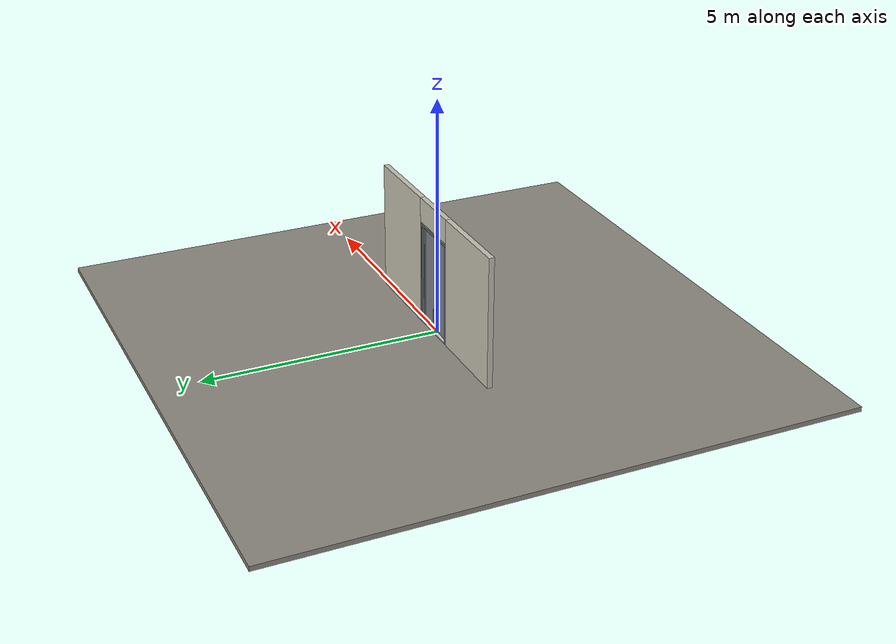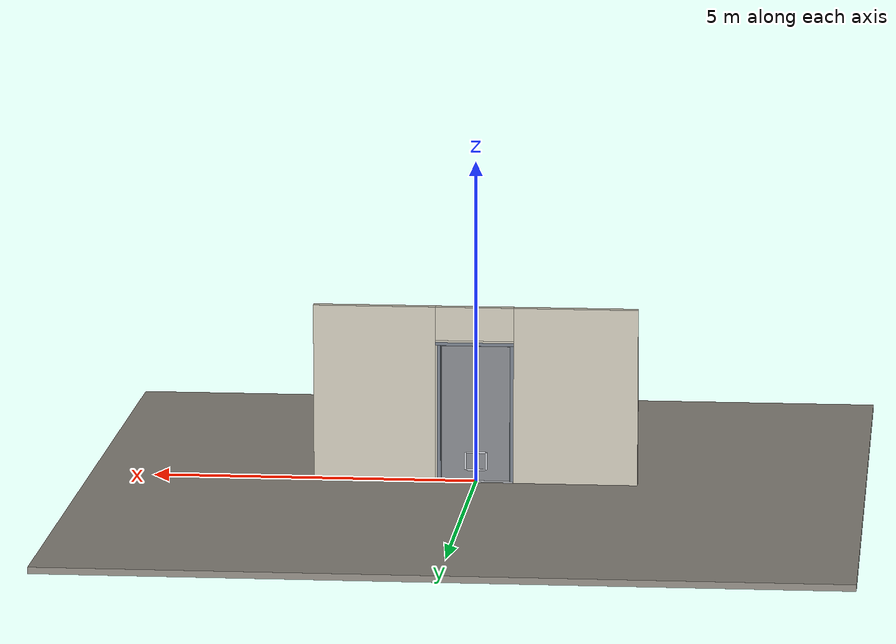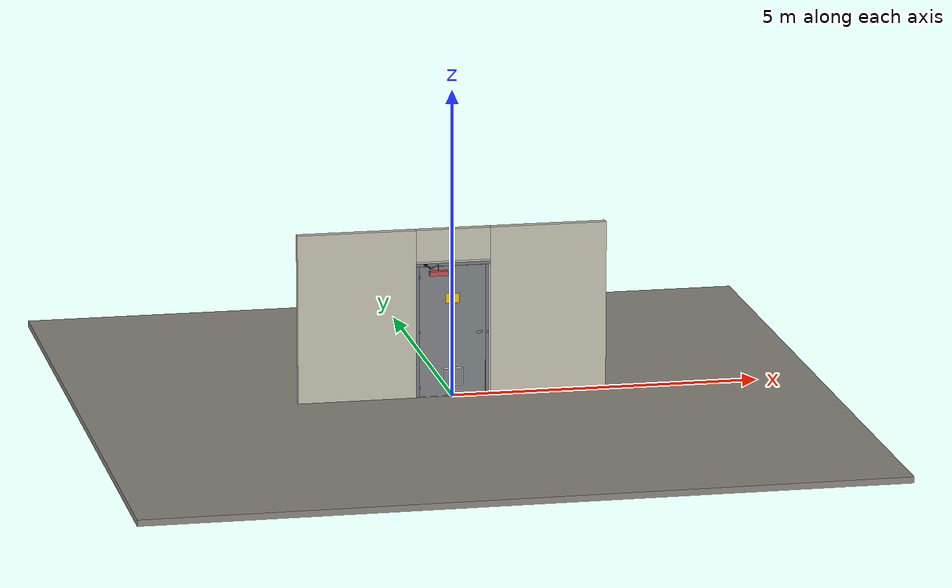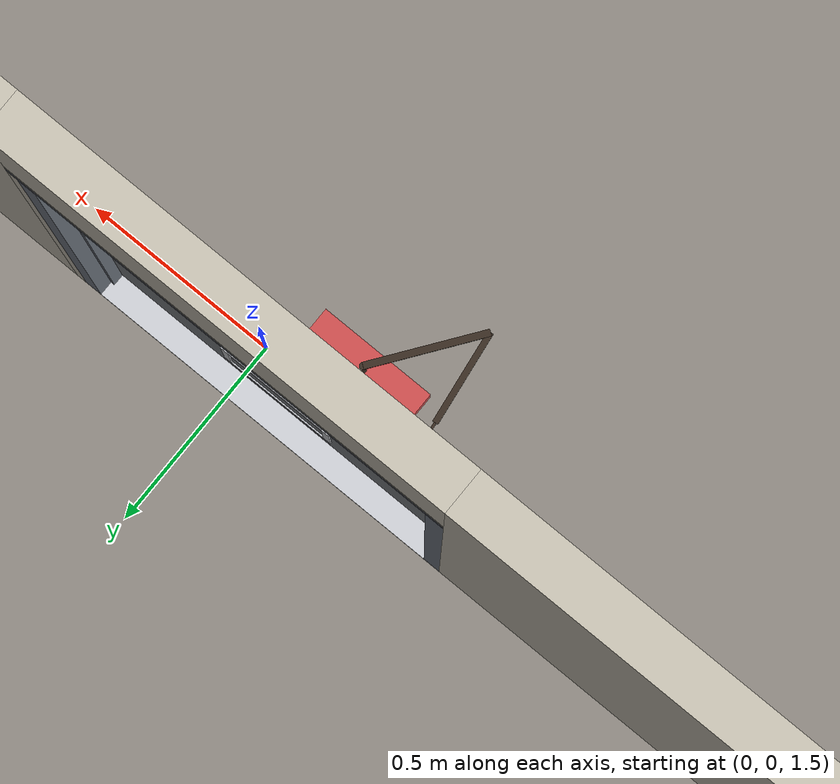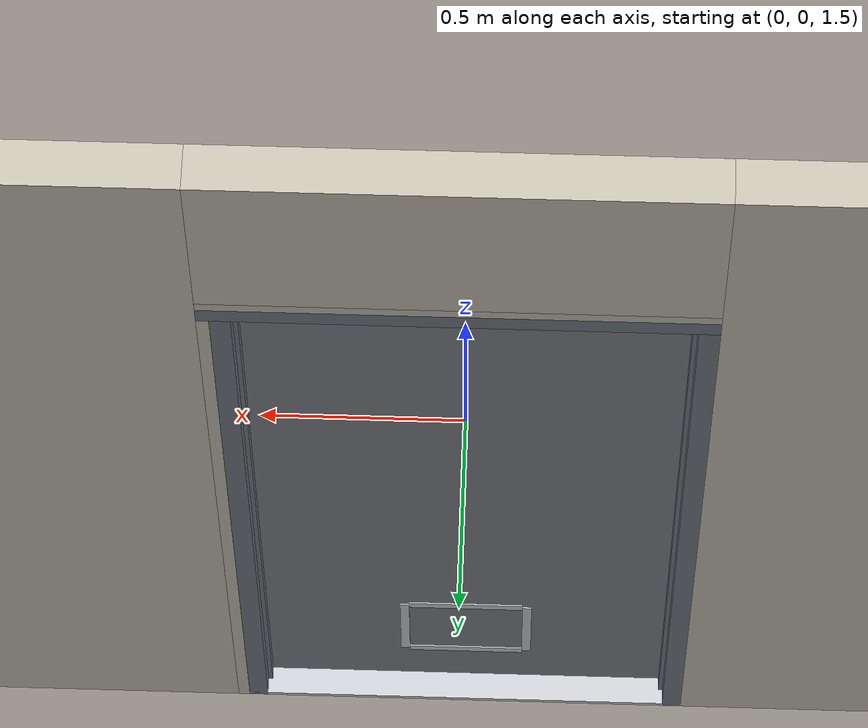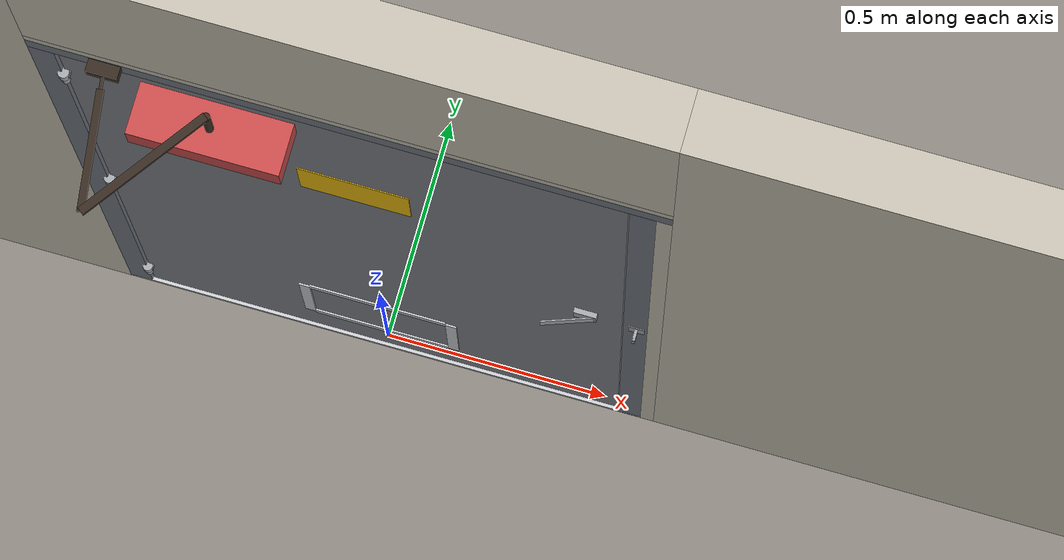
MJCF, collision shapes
<?xml version="1.0" ?>
<mujoco model="db0374_swing_single_full">
  <compiler angle="radian" meshdir="../../hardware" texturedir="../../textures" autolimits="true" inertiafromgeom="false"/>
  <option timestep="0.002" integrator="implicitfast" cone="elliptic" impratio="10" noslip_iterations="3">
    <flag multiccd="enable"/>
  </option>
  <size memory="16M"/>
  <default>
    <geom condim="4" solref="0.005 1" solimp="0.95 0.99 0.001"/>
    <joint solreflimit="0.005 1" solimplimit="0.95 0.99 0.001"/>
    <tendon solreflimit="0.005 1"/>
    <equality solref="0.002 1"/>
  </default>
  <visual>
    <headlight ambient="0.4 0.4 0.4" diffuse="0.7 0.7 0.7" specular="0.2 0.2 0.2"/>
    <quality shadowsize="4096"/>
    <map znear="0.01" zfar="60"/>
  </visual>
  <asset>
    <mesh name="closer_body_fdc4667657" file="closer_body_fdc4667657.obj"/>
    <mesh name="strap_hinge_78d1bbb966" file="strap_hinge_78d1bbb966.obj"/>
    <material name="mat_floor" rgba="0.55 0.53 0.5 1" specular="0.2" shininess="0.15" reflectance="0"/>
    <material name="mat_wall" rgba="0.78 0.76 0.7 1" specular="0.2" shininess="0.1" reflectance="0"/>
    <material name="mat_leaf" rgba="0.5 0.51 0.53 1" specular="0.2" shininess="0.46" reflectance="0"/>
    <material name="mat_hinge" rgba="0.65 0.66 0.68 1" specular="0.74" shininess="0.5" reflectance="0.36"/>
    <material name="mat_op_steel_galvanized" rgba="0.65 0.66 0.68 1" specular="0.74" shininess="0.5" reflectance="0.36"/>
    <material name="mat_padlock" rgba="0.85 0.66 0.3 1" specular="0.8" shininess="0.75" reflectance="0.4"/>
    <material name="mat_frame" rgba="0.45 0.48 0.52 1" specular="0.32" shininess="0.6" reflectance="0.08"/>
    <material name="mat_threshold" rgba="0.8 0.81 0.83 1" specular="0.8" shininess="0.6" reflectance="0.4"/>
    <material name="mat_closer" rgba="0.22 0.17 0.13 1" specular="0.8" shininess="0.6" reflectance="0.4"/>
    <material name="mat_vent" rgba="0.8 0.81 0.83 1" specular="0.8" shininess="0.6" reflectance="0.4"/>
    <material name="mat_placard" rgba="0.95 0.75 0.05 1" specular="0.2" shininess="0.5" reflectance="0"/>
    <texture name="skybox" type="skybox" builtin="gradient" rgb1="0.6 0.7 0.85" rgb2="0.9 0.92 0.95" width="256" height="256"/>
  </asset>
  <worldbody>
    <light name="sun" pos="1.5 -2.5 4" dir="-0.3 0.5 -0.8" directional="true" diffuse="0.8 0.8 0.8" specular="0.3 0.3 0.3" castshadow="true"/>
    <light name="fill" pos="-1.5 2.5 3" dir="0.3 -0.5 -0.7" directional="true" diffuse="0.35 0.35 0.4" castshadow="false"/>
    <camera name="robot_view" pos="0 -2.604812 1.812087" xyaxes="1 0 0 0 0.26963 0.962964" fovy="52"/>
    <camera name="far_view" pos="0 2.670812 1.812087" xyaxes="-1 0 0 0 -0.26963 0.962964" fovy="52"/>
    <camera name="iso" pos="2.004737 -2.182762 2.234138" xyaxes="0.741536 0.670913 0 -0.242917 0.268487 0.932151" fovy="46"/>
    <camera name="detail_handle" pos="0.747 -0.8385 1.32" xyaxes="0.97561 0.219512 0 -0.070934 0.315262 0.94635" fovy="38"/>
    <geom name="floor" type="box" size="6 6 0.05" pos="0 0 -0.05" material="mat_floor" group="0" contype="1" conaffinity="1" friction="0.8 0.005 0.0001" density="2400"/>
    <geom name="wall_left" type="box" size="0.9565 0.0575 1.3735" pos="-1.5435 0.033 1.3735" material="mat_wall" group="0" contype="1" conaffinity="1" friction="0.6 0.005 0.0001" density="800"/>
    <geom name="wall_right" type="box" size="0.9415 0.0575 1.3735" pos="1.5585 0.033 1.3735" material="mat_wall" group="0" contype="1" conaffinity="1" friction="0.6 0.005 0.0001" density="800"/>
    <geom name="wall_header" type="box" size="0.602 0.0575 0.26" pos="0.015 0.033 2.487" material="mat_wall" group="0" contype="1" conaffinity="1" friction="0.6 0.005 0.0001" density="800"/>
    <geom name="hinge_pintle_0" type="cylinder" size="0.008 0.02" pos="-0.534 -0.0245 0.141" material="mat_hinge" group="1" contype="0" conaffinity="0" density="7850"/>
    <geom name="hinge_pintle_1" type="cylinder" size="0.008 0.02" pos="-0.534 -0.0245 1.054" material="mat_hinge" group="1" contype="0" conaffinity="0" density="7850"/>
    <geom name="hinge_pintle_2" type="cylinder" size="0.008 0.02" pos="-0.534 -0.0245 1.967" material="mat_hinge" group="1" contype="0" conaffinity="0" density="7850"/>
    <geom name="leaf_staple_leg_n" type="box" size="0.003 0.0025 0.013" pos="0.565 -0.0375 1.0275" quat="0.707107 0.707107 0 0" material="mat_op_steel_galvanized" group="0" contype="1" conaffinity="1" friction="0.6 0.005 0.0001" density="7800"/>
    <geom name="leaf_staple_leg_p" type="box" size="0.003 0.0025 0.013" pos="0.565 -0.0375 1.0525" quat="0.707107 0.707107 0 0" material="mat_op_steel_galvanized" group="0" contype="1" conaffinity="1" friction="0.6 0.005 0.0001" density="7800"/>
    <geom name="leaf_staple_bridge" type="box" size="0.003 0.015 0.0025" pos="0.565 -0.048 1.04" quat="0.707107 0.707107 0 0" material="mat_op_steel_galvanized" group="0" contype="1" conaffinity="1" friction="0.6 0.005 0.0001" density="7800"/>
    <geom name="leaf_staple_base" type="box" size="0.016 0.021 0.001" pos="0.565 -0.0255 1.04" quat="0.707107 0.707107 0 0" material="mat_op_steel_galvanized" group="1" contype="0" conaffinity="0" density="7800"/>
    <geom name="jamb_hinge" type="box" size="0.025 0.0575 1.0735" pos="-0.562 0.033 1.0735" material="mat_frame" group="0" contype="1" conaffinity="1" friction="0.6 0.005 0.0001" density="300"/>
    <geom name="jamb_strike" type="box" size="0.025 0.0575 1.0735" pos="0.562 0.033 1.0735" material="mat_frame" group="0" contype="1" conaffinity="1" friction="0.6 0.005 0.0001" density="300"/>
    <geom name="stud_strike" type="box" size="0.015 0.0575 1.0735" pos="0.602 0.033 1.0735" material="mat_wall" group="0" contype="1" conaffinity="1" friction="0.6 0.005 0.0001" density="500"/>
    <geom name="jamb_head" type="box" size="0.602 0.0575 0.025" pos="0.015 0.033 2.172" material="mat_frame" group="0" contype="1" conaffinity="1" friction="0.6 0.005 0.0001" density="300"/>
    <geom name="head_stud" type="box" size="0.602 0.0575 0.015" pos="0.015 0.033 2.212" material="mat_wall" group="0" contype="1" conaffinity="1" friction="0.6 0.005 0.0001" density="500"/>
    <geom name="stop_hinge" type="box" size="0.0055 0.016 1.0735" pos="-0.5315 0.034 1.0735" material="mat_frame" group="0" contype="1" conaffinity="1" friction="0.6 0.005 0.0001" density="300"/>
    <geom name="stop_strike" type="box" size="0.0055 0.016 1.0735" pos="0.5315 0.034 1.0735" material="mat_frame" group="0" contype="1" conaffinity="1" friction="0.6 0.005 0.0001" density="300"/>
    <geom name="stop_head" type="box" size="0.537 0.016 0.0055" pos="0 0.034 2.1415" material="mat_frame" group="0" contype="1" conaffinity="1" friction="0.6 0.005 0.0001" density="300"/>
    <geom name="threshold" type="box" size="0.587 0.0575 0.0065" pos="0 0.033 0.0065" material="mat_threshold" group="0" contype="1" conaffinity="1" friction="0.5 0.005 0.0001" density="2700"/>
    <geom name="closer_bracket" type="box" size="0.03 0.012 0.014" pos="-0.437 -0.0365 2.177" material="mat_closer" group="1" contype="0" conaffinity="0" density="2700"/>
    <geom name="hinge_pintle_0_strap_0" type="box" size="0.0064 0.01775 0.016" pos="-0.534 0.00075 0.141" material="mat_hinge" group="1" contype="0" conaffinity="0" density="7850"/>
    <geom name="hinge_pintle_1_strap_0" type="box" size="0.0064 0.01775 0.016" pos="-0.534 0.00075 1.054" material="mat_hinge" group="1" contype="0" conaffinity="0" density="7850"/>
    <geom name="hinge_pintle_2_strap_0" type="box" size="0.0064 0.01775 0.016" pos="-0.534 0.00075 1.967" material="mat_hinge" group="1" contype="0" conaffinity="0" density="7850"/>
    <site name="approach_point" pos="0 -1.5 0" quat="1 0 0 0" size="0.05" rgba="0.2 0.9 0.2 0.5" group="4"/>
    <site name="goal_point" pos="0 1.5 0" quat="1 0 0 0" size="0.05" rgba="0.2 0.9 0.2 0.5" group="4"/>
    <site name="door_plane_center" pos="0 0 1.0735" quat="1 0 0 0" size="0.02" rgba="0.2 0.9 0.2 0.5" group="4"/>
    <body name="leaf" pos="-0.537 0 0">
      <inertial pos="0.472564 -0.01485 1.268634" mass="59.021646" quat="0.522144 0.522569 0.48737 -0.465572" diaginertia="4.938044446 27.71427112 32.569350382"/>
      <joint name="leaf_hinge" type="hinge" axis="0 0 -1" pos="0.003 -0.0245 0" limited="true" range="0 1.570796" damping="12.49954" frictionloss="6.260494" stiffness="14.183889" springref="-2.144687" armature="0.02"/>
      <geom name="leaf_slab" type="box" size="0.5335 0.0175 1.063" pos="0.5365 0 1.08" material="mat_leaf" group="0" contype="1" conaffinity="1" friction="0.4 0.005 0.0001" density="1"/>
      <geom name="hinge_strap_0" type="mesh" mesh="strap_hinge_78d1bbb966" pos="0.003 -0.0205 0.167" material="mat_hinge" group="1" contype="0" conaffinity="0" density="7850"/>
      <geom name="hinge_strap_eye_0" type="cylinder" size="0.011 0.012" pos="0.003 -0.0245 0.167" material="mat_hinge" group="1" contype="0" conaffinity="0" density="7850"/>
      <geom name="hinge_strap_neck_0" type="box" size="0.012 0.006 0.006" pos="0.003 -0.0225 0.167" material="mat_hinge" group="1" contype="0" conaffinity="0" density="7850"/>
      <geom name="hinge_strap_1" type="mesh" mesh="strap_hinge_78d1bbb966" pos="0.003 -0.0205 1.08" material="mat_hinge" group="1" contype="0" conaffinity="0" density="7850"/>
      <geom name="hinge_strap_eye_1" type="cylinder" size="0.011 0.012" pos="0.003 -0.0245 1.08" material="mat_hinge" group="1" contype="0" conaffinity="0" density="7850"/>
      <geom name="hinge_strap_neck_1" type="box" size="0.012 0.006 0.006" pos="0.003 -0.0225 1.08" material="mat_hinge" group="1" contype="0" conaffinity="0" density="7850"/>
      <geom name="hinge_strap_2" type="mesh" mesh="strap_hinge_78d1bbb966" pos="0.003 -0.0205 1.993" material="mat_hinge" group="1" contype="0" conaffinity="0" density="7850"/>
      <geom name="hinge_strap_eye_2" type="cylinder" size="0.011 0.012" pos="0.003 -0.0245 1.993" material="mat_hinge" group="1" contype="0" conaffinity="0" density="7850"/>
      <geom name="hinge_strap_neck_2" type="box" size="0.012 0.006 0.006" pos="0.003 -0.0225 1.993" material="mat_hinge" group="1" contype="0" conaffinity="0" density="7850"/>
      <geom name="leaf_hasp_plate" type="box" size="0.024 0.0215 0.0055" pos="0.995 -0.023 1.04" quat="0.707107 0.707107 0 0" material="mat_op_steel_galvanized" group="1" contype="0" conaffinity="0" density="7800"/>
      <geom name="closer_body" type="mesh" mesh="closer_body_fdc4667657" pos="0.3 -0.0175 2.046" quat="0.707107 0.707107 0 0" material="mat_closer" group="1" contype="0" conaffinity="0" density="2000"/>
      <geom name="closer_body_col" type="box" size="0.145 0.05 0.035" pos="0.3 -0.0675 2.046" material="mat_closer" group="3" contype="1" conaffinity="1" rgba="0.8 0.3 0.3 0.25" friction="0.6 0.005 0.0001" density="2000"/>
      <geom name="closer_pinion_shaft" type="cylinder" size="0.008 0.0655" pos="0.3 -0.0675 2.1115" material="mat_closer" group="1" contype="0" conaffinity="0" density="2700"/>
      <geom name="louver_vent_stile_n_l" type="box" size="0.012 0.002 0.137" pos="0.3745 -0.0195 0.322" material="mat_vent" group="2" contype="0" conaffinity="0" density="2700"/>
      <geom name="louver_vent_stile_n_r" type="box" size="0.012 0.002 0.137" pos="0.6985 -0.0195 0.322" material="mat_vent" group="2" contype="0" conaffinity="0" density="2700"/>
      <geom name="louver_vent_rail_n_b" type="box" size="0.15 0.002 0.012" pos="0.5365 -0.0195 0.185" material="mat_vent" group="2" contype="0" conaffinity="0" density="2700"/>
      <geom name="louver_vent_rail_n_t" type="box" size="0.15 0.002 0.012" pos="0.5365 -0.0195 0.459" material="mat_vent" group="2" contype="0" conaffinity="0" density="2700"/>
      <geom name="louver_vent_stile_p_l" type="box" size="0.012 0.002 0.137" pos="0.3745 0.0195 0.322" material="mat_vent" group="2" contype="0" conaffinity="0" density="2700"/>
      <geom name="louver_vent_stile_p_r" type="box" size="0.012 0.002 0.137" pos="0.6985 0.0195 0.322" material="mat_vent" group="2" contype="0" conaffinity="0" density="2700"/>
      <geom name="louver_vent_rail_p_b" type="box" size="0.15 0.002 0.012" pos="0.5365 0.0195 0.185" material="mat_vent" group="2" contype="0" conaffinity="0" density="2700"/>
      <geom name="louver_vent_rail_p_t" type="box" size="0.15 0.002 0.012" pos="0.5365 0.0195 0.459" material="mat_vent" group="2" contype="0" conaffinity="0" density="2700"/>
      <geom name="louver_vent_slat_0" type="box" size="0.15 0.0015 0.015" pos="0.5365 0 0.217833" quat="0.965926 -0.258819 0 0" material="mat_vent" group="2" contype="0" conaffinity="0" density="2700"/>
      <geom name="louver_vent_slat_1" type="box" size="0.15 0.0015 0.015" pos="0.5365 0 0.2595" quat="0.965926 -0.258819 0 0" material="mat_vent" group="2" contype="0" conaffinity="0" density="2700"/>
      <geom name="louver_vent_slat_2" type="box" size="0.15 0.0015 0.015" pos="0.5365 0 0.301167" quat="0.965926 -0.258819 0 0" material="mat_vent" group="2" contype="0" conaffinity="0" density="2700"/>
      <geom name="louver_vent_slat_3" type="box" size="0.15 0.0015 0.015" pos="0.5365 0 0.342833" quat="0.965926 -0.258819 0 0" material="mat_vent" group="2" contype="0" conaffinity="0" density="2700"/>
      <geom name="louver_vent_slat_4" type="box" size="0.15 0.0015 0.015" pos="0.5365 0 0.3845" quat="0.965926 -0.258819 0 0" material="mat_vent" group="2" contype="0" conaffinity="0" density="2700"/>
      <geom name="louver_vent_slat_5" type="box" size="0.15 0.0015 0.015" pos="0.5365 0 0.426167" quat="0.965926 -0.258819 0 0" material="mat_vent" group="2" contype="0" conaffinity="0" density="2700"/>
      <geom name="warning_placard" type="box" size="0.11 0.001 0.08" pos="0.5365 -0.0185 1.6115" material="mat_placard" group="2" contype="0" conaffinity="0" density="1000"/>
      <site name="leaf_edge_mid" pos="1.07 0 1.063" quat="1 0 0 0" size="0.02" rgba="0.2 0.9 0.2 0.5" group="4"/>
      <body name="leaf_hasp" pos="1.015 -0.0285 1.04">
        <inertial pos="-0.042059 -0.012847 0" mass="0.110745" quat="0.695779 -0.695779 -0.126064 0.126064" diaginertia="0.000012666 0.000140194 0.000152371"/>
        <joint name="leaf_hasp_hinge" type="hinge" axis="0 0 -1" limited="true" range="0 2.9" damping="0.02" frictionloss="0.05" armature="0.005" ref="2.8"/>
        <geom name="leaf_hasp_strap" type="box" size="0.0545 0.0175 0.0015" pos="-0.051854 -0.016844 0" quat="0.120185 0.120185 -0.696818 -0.696818" material="mat_op_steel_galvanized" group="0" contype="1" conaffinity="1" friction="0.6 0.005 0.0001" density="7800"/>
        <geom name="leaf_hasp_knuckle" type="cylinder" size="0.0045 0.0215" pos="-0.00134 0.003769 0" quat="0 0.169967 -0.98545 0" material="mat_op_steel_galvanized" group="1" contype="0" conaffinity="0" density="7850"/>
        <site name="leaf_hasp_grip" pos="-0.087208 -0.020392 0" quat="0.169967 0 0 -0.98545" size="0.01" rgba="0.2 0.9 0.2 0.5" group="4"/>
      </body>
      <body name="closer_arm_main" pos="0.3 -0.0675 2.177" quat="0.454107 0 0 -0.890947">
        <inertial pos="0.14 0 0" mass="0.12096" quat="1 0 0 0" diaginertia="0.000003588 0.00079128 0.000792852"/>
        <joint name="closer_pinion" type="hinge" axis="0 0 1" limited="false" damping="0.01" armature="0.002"/>
        <geom name="closer_arm_main_geom" type="box" size="0.14 0.008 0.005" pos="0.14 0 0" material="mat_closer" group="1" contype="0" conaffinity="0" density="2700"/>
        <body name="closer_arm_fore" pos="0.28 0 0" quat="-0.373215 0 0 0.927745">
          <inertial pos="0.128088 0 0" mass="0.076531" quat="1 0 0 0" diaginertia="0.000001771 0.000437665 0.000438201"/>
          <joint name="closer_elbow" type="hinge" axis="0 0 1" limited="false" damping="0.01" armature="0.002"/>
          <geom name="closer_arm_fore_geom" type="box" size="0.1125 0.007 0.004" pos="0.1125 0 0" material="mat_closer" group="1" contype="0" conaffinity="0" density="2700"/>
          <geom name="closer_fore_neck" type="box" size="0.0175 0.003 0.003" pos="0.2425 0 0" material="mat_closer" group="1" contype="0" conaffinity="0" density="2700"/>
          <geom name="closer_fore_pivot" type="cylinder" size="0.005 0.012" pos="0.26 0 0" material="mat_closer" group="1" contype="0" conaffinity="0" density="2700"/>
        </body>
      </body>
    </body>
  </worldbody>
  <equality>
    <connect name="closer_arm_connect" body1="closer_arm_fore" body2="world" anchor="0.26 0 0" active="true"/>
  </equality>
  <contact>
    <exclude body1="closer_arm_main" body2="leaf"/>
    <exclude body1="closer_arm_fore" body2="leaf"/>
    <exclude body1="closer_arm_main" body2="closer_arm_fore"/>
  </contact>
  <sensor>
    <jointpos name="leaf_hinge_pos" joint="leaf_hinge"/>
    <jointvel name="leaf_hinge_vel" joint="leaf_hinge"/>
    <jointpos name="leaf_hasp_hinge_pos" joint="leaf_hasp_hinge"/>
    <jointvel name="leaf_hasp_hinge_vel" joint="leaf_hasp_hinge"/>
  </sensor>
</mujoco>
